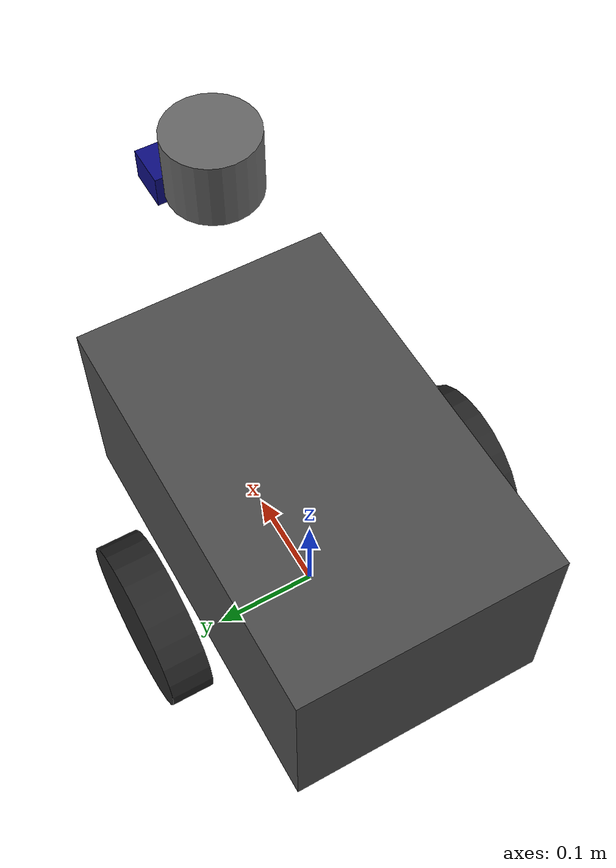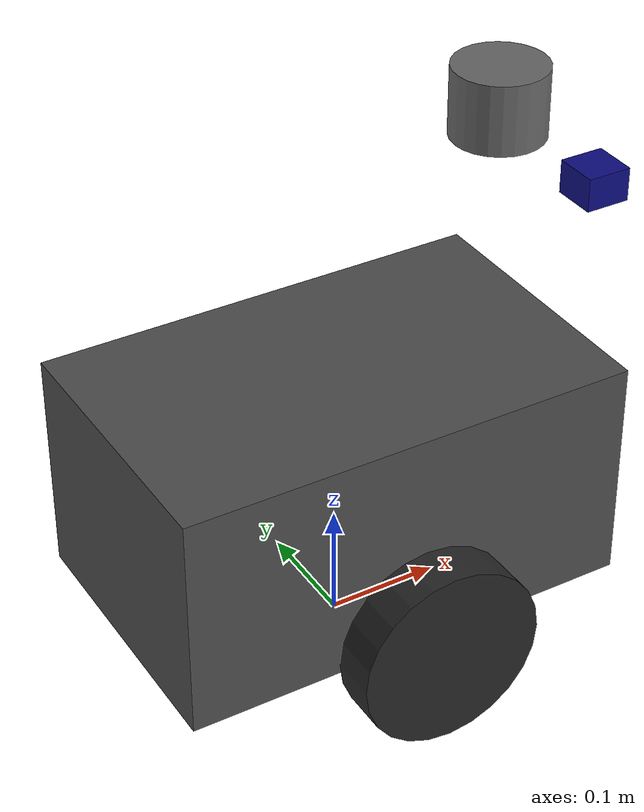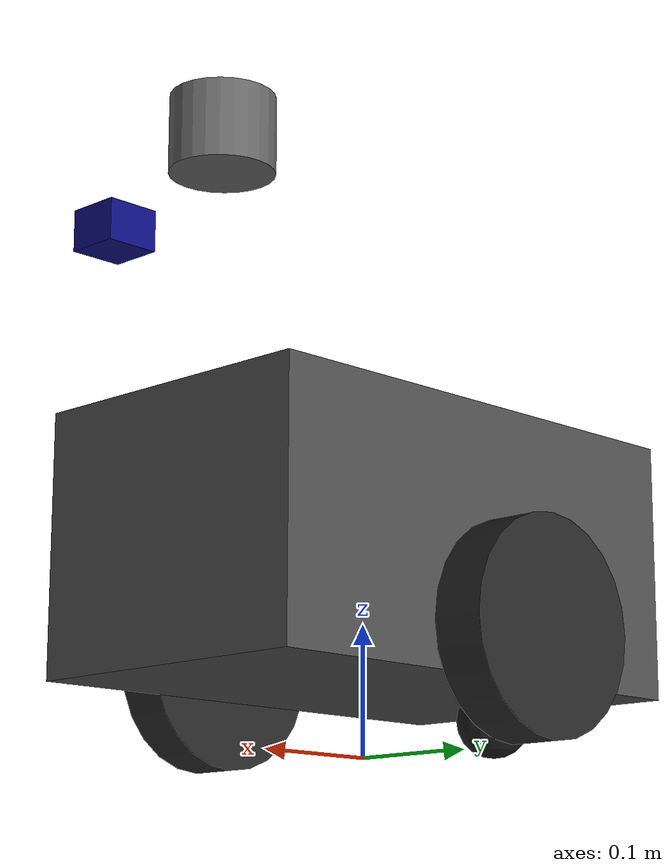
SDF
<?xml version="1.0" ?>
<sdf version="1.11">
  <model name="simple_robot">

    <!-- ================================================================
        底盘 — 机器人主体
        尺寸：0.4m(长) × 0.25m(宽) × 0.2m(高)
        ================================================================ -->
    <link name="chassis">
      <pose>0 0 0.15 0 0 0</pose>
      <inertial>
        <mass>15.0</mass>
        <inertia>
          <ixx>0.4</ixx>  <ixy>0.0</ixy>  <ixz>0.0</ixz>
          <iyy>0.4</iyy>  <iyz>0.0</iyz>
          <izz>0.5</izz>
        </inertia>
      </inertial>
      <visual name="chassis_visual">
        <geometry>
          <box><size>0.4 0.25 0.2</size></box>
        </geometry>
        <material>
          <ambient>0.2 0.2 0.2</ambient>
          <diffuse>0.3 0.3 0.3</diffuse>
          <specular>0.1 0.1 0.1</specular>
        </material>
      </visual>
      <collision name="chassis_collision">
        <geometry>
          <box><size>0.4 0.25 0.2</size></box>
        </geometry>
      </collision>
    </link>

    <!-- ================================================================
        左驱动轮
        半径 0.08m，宽度 0.04m
        ================================================================ -->
    <link name="left_wheel">
      <pose>0 0.165 0.08 1.5708 0 0</pose>
      <inertial>
        <mass>0.5</mass>
        <inertia>
          <ixx>0.001</ixx>  <ixy>0</ixy>  <ixz>0</ixz>
          <iyy>0.001</iyy>  <iyz>0</iyz>
          <izz>0.001</izz>
        </inertia>
      </inertial>
      <visual name="left_wheel_visual">
        <geometry>
          <cylinder><radius>0.08</radius><length>0.04</length></cylinder>
        </geometry>
        <material>
          <ambient>0.1 0.1 0.1</ambient>
          <diffuse>0.15 0.15 0.15</diffuse>
        </material>
      </visual>
      <collision name="left_wheel_collision">
        <geometry>
          <cylinder><radius>0.08</radius><length>0.04</length></cylinder>
        </geometry>
      </collision>
    </link>

    <joint name="left_wheel_joint" type="revolute">
      <parent>chassis</parent>
      <child>left_wheel</child>
      <axis><xyz>0 1 0</xyz></axis>
      <pose>0 0.165 0 0 0 0</pose>
    </joint>

    <!-- ================================================================
        右驱动轮
        ================================================================ -->
    <link name="right_wheel">
      <pose>0 -0.165 0.08 1.5708 0 0</pose>
      <inertial>
        <mass>0.5</mass>
        <inertia>
          <ixx>0.001</ixx>  <ixy>0</ixy>  <ixz>0</ixz>
          <iyy>0.001</iyy>  <iyz>0</iyz>
          <izz>0.001</izz>
        </inertia>
      </inertial>
      <visual name="right_wheel_visual">
        <geometry>
          <cylinder><radius>0.08</radius><length>0.04</length></cylinder>
        </geometry>
        <material>
          <ambient>0.1 0.1 0.1</ambient>
          <diffuse>0.15 0.15 0.15</diffuse>
        </material>
      </visual>
      <collision name="right_wheel_collision">
        <geometry>
          <cylinder><radius>0.08</radius><length>0.04</length></cylinder>
        </geometry>
      </collision>
    </link>

    <joint name="right_wheel_joint" type="revolute">
      <parent>chassis</parent>
      <child>right_wheel</child>
      <axis><xyz>0 -1 0</xyz></axis>
      <pose>0 -0.165 0 0 0 0</pose>
    </joint>

    <!-- ================================================================
        万向支撑轮（后方），保持平衡
        ================================================================ -->
    <link name="caster_wheel">
      <pose>-0.15 0 0.04 0 0 0</pose>
      <inertial>
        <mass>0.1</mass>
        <inertia>
          <ixx>1e-5</ixx>  <ixy>0</ixy>  <ixz>0</ixz>
          <iyy>1e-5</iyy>  <iyz>0</iyz>
          <izz>1e-5</izz>
        </inertia>
      </inertial>
      <visual name="caster_visual">
        <geometry><sphere><radius>0.03</radius></sphere></geometry>
        <material><ambient>0.1 0.1 0.1</ambient></material>
      </visual>
      <collision name="caster_collision">
        <geometry><sphere><radius>0.03</radius></sphere></geometry>
      </collision>
    </link>

    <joint name="caster_joint" type="ball">
      <parent>chassis</parent>
      <child>caster_wheel</child>
    </joint>

    <link name="camera_link">
      <pose>0.25 0 0.35 0 0 0</pose>
      <inertial>
        <mass>0.1</mass>
        <inertia>
          <ixx>1e-5</ixx>  <ixy>0</ixy>  <ixz>0</ixz>
          <iyy>1e-5</iyy>  <iyz>0</iyz>
          <izz>1e-5</izz>
        </inertia>
      </inertial>
      <visual name="camera_visual">
        <geometry><box><size>0.04 0.04 0.03</size></box></geometry>
        <material>
          <ambient>0.05 0.05 0.3</ambient>
          <diffuse>0.05 0.05 0.5</diffuse>
        </material>
      </visual>

      <sensor name="camera" type="camera">
        <camera>
          <horizontal_fov>1.047</horizontal_fov>
          <image>
            <width>640</width>
            <height>480</height>
          </image>
          <clip>
            <near>0.05</near>
            <far>50.0</far>
          </clip>
        </camera>
        <always_on>1</always_on>
        <update_rate>30.0</update_rate>
        <visualize>false</visualize>
        <topic>/camera/image</topic>
      </sensor>
    </link>

    <joint name="camera_joint" type="fixed">
      <parent>chassis</parent>
      <child>camera_link</child>
    </joint>

    <link name="lidar_link">
      <pose>0.15 0 0.45 0 0 0</pose>
      <inertial>
        <mass>0.3</mass>
        <inertia>
          <ixx>0.001</ixx>  <ixy>0</ixy>  <ixz>0</ixz>
          <iyy>0.001</iyy>  <iyz>0</iyz>
          <izz>0.001</izz>
        </inertia>
      </inertial>
      <visual name="lidar_visual">
        <geometry>
          <cylinder><radius>0.04</radius><length>0.06</length></cylinder>
        </geometry>
        <material>
          <ambient>0.3 0.3 0.3</ambient>
          <diffuse>0.4 0.4 0.4</diffuse>
        </material>
      </visual>

      <sensor name="lidar" type="gpu_lidar">
        <ray>
          <scan>
            <horizontal>
              <samples>360</samples>
              <resolution>1</resolution>
              <min_angle>-3.14159</min_angle>
              <max_angle>3.14159</max_angle>
            </horizontal>
            <vertical>
              <samples>16</samples>
              <resolution>1</resolution>
              <min_angle>-0.2618</min_angle>
              <max_angle>0.2618</max_angle>
            </vertical>
          </scan>
          <range>
            <min>0.1</min>
            <max>20.0</max>
            <resolution>0.01</resolution>
          </range>
          <noise>
            <type>gaussian</type>
            <mean>0.0</mean>
            <stddev>0.02</stddev>
          </noise>
        </ray>
        <always_on>1</always_on>
        <update_rate>10.0</update_rate>
        <visualize>false</visualize>
        <topic>/lidar/points</topic>
      </sensor>
    </link>

    <joint name="lidar_joint" type="fixed">
      <parent>chassis</parent>
      <child>lidar_link</child>
    </joint>

    <!-- ================================================================
        IMU 传感器 — 挂载于底盘中心
        ================================================================ -->
    <link name="imu_link">
      <pose>0 0 0.1 0 0 0</pose>
      <sensor name="imu" type="imu">
        <always_on>1</always_on>
        <update_rate>100.0</update_rate>
        <visualize>false</visualize>
        <topic>/imu</topic>
      </sensor>
    </link>

    <joint name="imu_joint" type="fixed">
      <parent>chassis</parent>
      <child>imu_link</child>
    </joint>

    <plugin
      filename="gz-sim-diff-drive-system"
      name="gz::sim::systems::DiffDrive">
      <left_joint>left_wheel_joint</left_joint>
      <right_joint>right_wheel_joint</right_joint>
      <wheel_separation>0.33</wheel_separation>
      <wheel_radius>0.08</wheel_radius>
      <max_linear_acceleration>2.0</max_linear_acceleration>
      <max_angular_acceleration>4.0</max_angular_acceleration>
      <max_linear_velocity>1.0</max_linear_velocity>
      <max_angular_velocity>3.0</max_angular_velocity>
      <odom_publish_frequency>30.0</odom_publish_frequency>
      <topic>/cmd_vel</topic>
      <odom_topic>/odom</odom_topic>
      <tf_topic>/tf</tf_topic>
      <frame_id>odom</frame_id>
      <child_frame_id>base_link</child_frame_id>
    </plugin>

    <!-- ================================================================
        关节状态发布器
        ================================================================ -->
    <plugin
      filename="gz-sim-joint-state-publisher-system"
      name="gz::sim::systems::JointStatePublisher">
      <joint_name>left_wheel_joint</joint_name>
      <joint_name>right_wheel_joint</joint_name>
      <update_rate>30.0</update_rate>
      <topic>/joint_states</topic>
    </plugin>

  </model>

</sdf>
